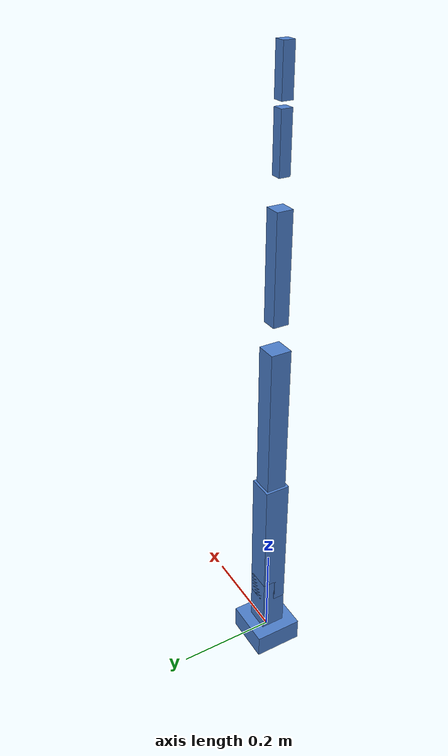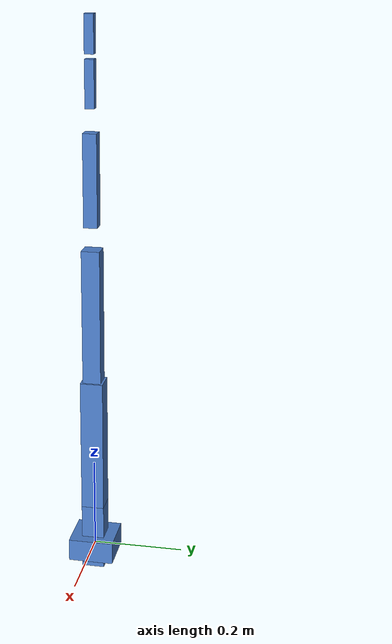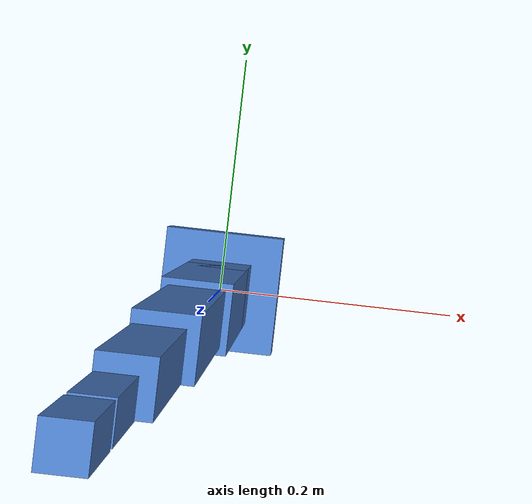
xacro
<?xml version="1.0"?>
<robot xmlns:xacro="http://www.ros.org/wiki/xacro" name="dobot_cr10">

  <xacro:arg name="prefix" default=""/>

  <!-- MATERIAL -->
  <material name="dobot_blue">
    <color rgba="0.3 0.5 0.8 1"/>
  </material>

  <!-- BASE LINK -->
  <link name="$(arg prefix)base_link">
    <inertial>
      <origin xyz="0 0 0" rpy="0 0 0"/>
      <mass value="1.0"/>
      <inertia ixx="0.01" ixy="0.0" ixz="0.0"
               iyy="0.01" iyz="0.0" izz="0.01"/>
    </inertial>
    <visual>
      <geometry><box size="0.1 0.1 0.05"/></geometry>
      <material name="dobot_blue"/>
    </visual>
    <collision>
      <geometry><box size="0.1 0.1 0.05"/></geometry>
    </collision>
  </link>

  <!-- LINK 1 -->
  <link name="$(arg prefix)link_1">
    <inertial>
      <origin xyz="0 0 0.1" rpy="0 0 0"/>
      <mass value="4.0"/>
      <inertia ixx="0.01" ixy="0.0" ixz="0.0"
               iyy="0.01" iyz="0.0" izz="0.01"/>
    </inertial>
    <visual>
      <geometry><box size="0.05 0.05 0.2"/></geometry>
      <material name="dobot_blue"/>
    </visual>
    <collision>
      <geometry><box size="0.05 0.05 0.2"/></geometry>
    </collision>
  </link>

  <!-- LINK 2 -->
  <link name="$(arg prefix)link_2">
    <inertial>
      <origin xyz="0 0 0.15" rpy="0 0 0"/>
      <mass value="4.0"/>
      <inertia ixx="0.02" ixy="0.0" ixz="0.0"
               iyy="0.02" iyz="0.0" izz="0.02"/>
    </inertial>
    <visual>
      <geometry><box size="0.05 0.05 0.3"/></geometry>
      <material name="dobot_blue"/>
    </visual>
    <collision>
      <geometry><box size="0.05 0.05 0.3"/></geometry>
    </collision>
  </link>

  <!-- LINK 3 -->
  <link name="$(arg prefix)link_3">
    <inertial>
      <origin xyz="0 0 0.15" rpy="0 0 0"/>
      <mass value="3.0"/>
      <inertia ixx="0.01" ixy="0.0" ixz="0.0"
               iyy="0.01" iyz="0.0" izz="0.01"/>
    </inertial>
    <visual>
      <geometry><box size="0.04 0.04 0.3"/></geometry>
      <material name="dobot_blue"/>
    </visual>
    <collision>
      <geometry><box size="0.04 0.04 0.3"/></geometry>
    </collision>
  </link>

  <!-- LINK 4 -->
  <link name="$(arg prefix)link_4">
    <inertial>
      <origin xyz="0 0 0.1" rpy="0 0 0"/>
      <mass value="1.0"/>
      <inertia ixx="0.005" ixy="0.0" ixz="0.0"
               iyy="0.005" iyz="0.0" izz="0.005"/>
    </inertial>
    <visual>
      <geometry><box size="0.03 0.03 0.2"/></geometry>
      <material name="dobot_blue"/>
    </visual>
    <collision>
      <geometry><box size="0.03 0.03 0.2"/></geometry>
    </collision>
  </link>

  <!-- LINK 5 -->
  <link name="$(arg prefix)link_5">
    <inertial>
      <origin xyz="0 0 0.05" rpy="0 0 0"/>
      <mass value="0.8"/>
      <inertia ixx="0.003" ixy="0.0" ixz="0.0"
               iyy="0.003" iyz="0.0" izz="0.003"/>
    </inertial>
    <visual>
      <geometry><box size="0.02 0.02 0.1"/></geometry>
      <material name="dobot_blue"/>
    </visual>
    <collision>
      <geometry><box size="0.02 0.02 0.1"/></geometry>
    </collision>
  </link>

  <!-- LINK 6 -->
  <link name="$(arg prefix)link_6">
    <inertial>
      <origin xyz="0 0 0.03" rpy="0 0 0"/>
      <mass value="0.5"/>
      <inertia ixx="0.002" ixy="0.0" ixz="0.0"
               iyy="0.002" iyz="0.0" izz="0.002"/>
    </inertial>
    <visual>
      <geometry><box size="0.02 0.02 0.08"/></geometry>
      <material name="dobot_blue"/>
    </visual>
    <collision>
      <geometry><box size="0.02 0.02 0.08"/></geometry>
    </collision>
  </link>

  <!-- TOOL -->
  <link name="$(arg prefix)tool0"/>
  <joint name="$(arg prefix)link_6_tool0" type="fixed">
    <parent link="$(arg prefix)link_6"/>
    <child link="$(arg prefix)tool0"/>
    <origin xyz="0.05 0 0" rpy="0 0 0"/>
  </joint>

  <!-- JOINTS -->
  <joint name="$(arg prefix)joint_1" type="revolute">
    <parent link="$(arg prefix)base_link"/>
    <child link="$(arg prefix)link_1"/>
    <origin xyz="0 0 0.05" rpy="0 0 0"/>
    <axis xyz="0 0 1"/>
    <limit lower="-6.28" upper="6.28" effort="150" velocity="2"/>
  </joint>

  <joint name="$(arg prefix)joint_2" type="revolute">
    <parent link="$(arg prefix)link_1"/>
    <child link="$(arg prefix)link_2"/>
    <origin xyz="0 0 0.2" rpy="0 0 0"/>
    <axis xyz="1 0 0"/>
    <limit lower="-3.14" upper="3.14" effort="150" velocity="2"/>
  </joint>

  <joint name="$(arg prefix)joint_3" type="revolute">
    <parent link="$(arg prefix)link_2"/>
    <child link="$(arg prefix)link_3"/>
    <origin xyz="0 0 0.3" rpy="0 0 0"/>
    <axis xyz="1 0 0"/>
    <limit lower="-6.28" upper="6.28" effort="100" velocity="2"/>
  </joint>

  <joint name="$(arg prefix)joint_4" type="revolute">
    <parent link="$(arg prefix)link_3"/>
    <child link="$(arg prefix)link_4"/>
    <origin xyz="0 0 0.3" rpy="0 0 0"/>
    <axis xyz="1 0 0"/>
    <limit lower="-6.28" upper="6.28" effort="50" velocity="3"/>
  </joint>

  <joint name="$(arg prefix)joint_5" type="revolute">
    <parent link="$(arg prefix)link_4"/>
    <child link="$(arg prefix)link_5"/>
    <origin xyz="0 0 0.2" rpy="0 0 0"/>
    <axis xyz="0 0 1"/>
    <limit lower="-6.28" upper="6.28" effort="50" velocity="3"/>
  </joint>

  <joint name="$(arg prefix)joint_6" type="revolute">
    <parent link="$(arg prefix)link_5"/>
    <child link="$(arg prefix)link_6"/>
    <origin xyz="0 0 0.1" rpy="0 0 0"/>
    <axis xyz="1 0 0"/>
    <limit lower="-6.28" upper="6.28" effort="30" velocity="3"/>
  </joint>

</robot>
